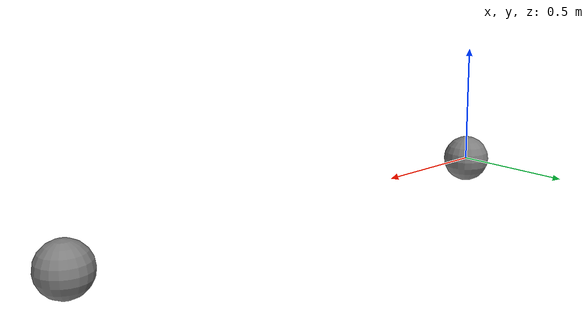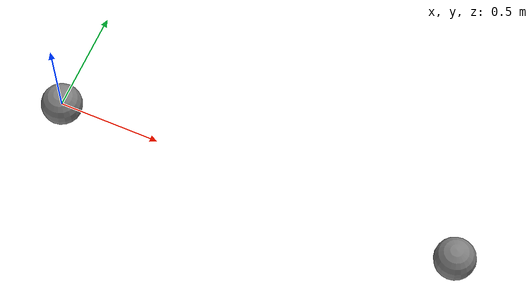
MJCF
<mujoco model="distance_world">
            <option gravity="0 0 0" timestep="0.001"/>
            <worldbody>
                <geom name="world_geom" type="sphere" size="0.1"/>
                <body name="body1" pos="2 0 0">
                    <freejoint/>
                    <geom name="g1" type="sphere" size="0.1" mass="1.0"/>
                </body>
            </worldbody>
            <equality>
                <distance geom1="g1" geom2="world_geom" distance="2.0"/>
            </equality>
        </mujoco>
